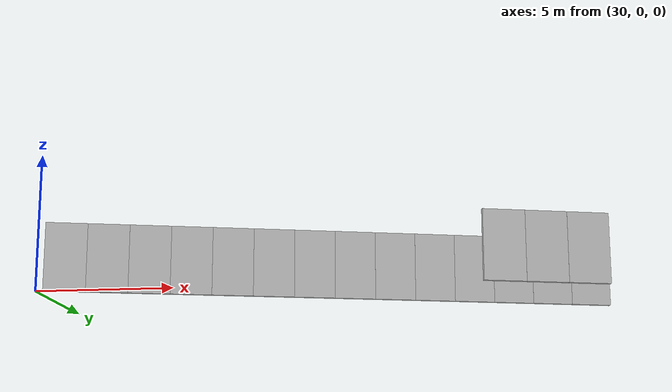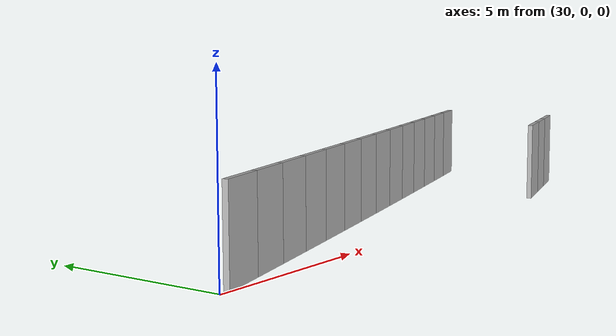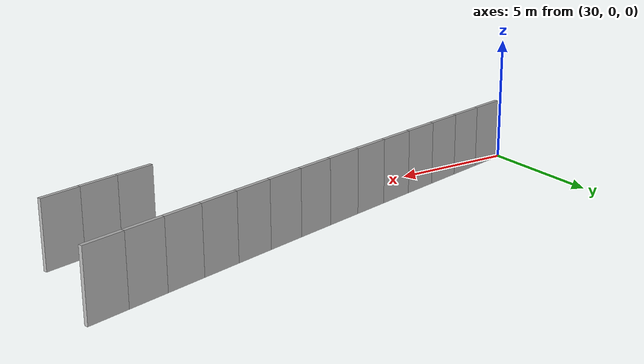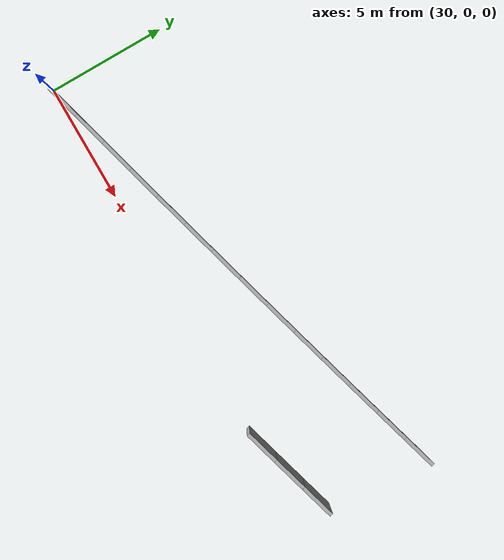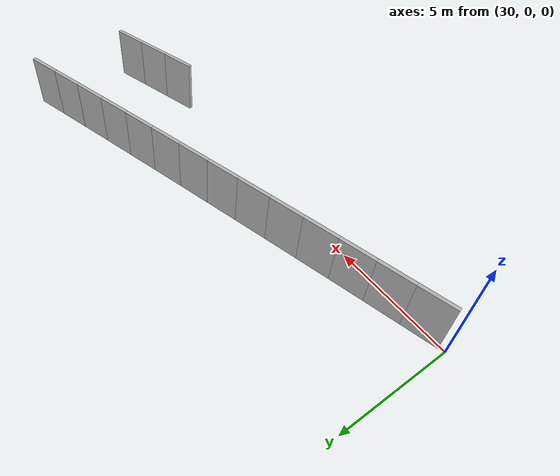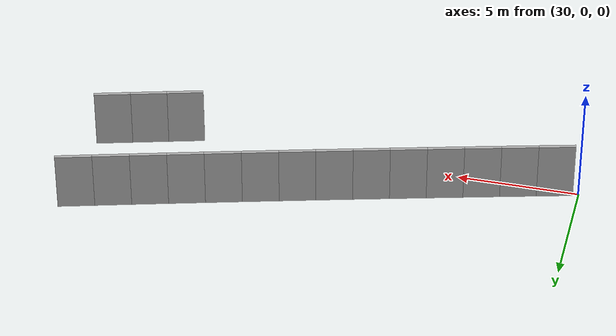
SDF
<?xml version="1.0" ?>
<sdf version="1.6">
  <model name="sps_3004">
    <pose frame="">0 0 0 0 -0 0</pose>
    <static>1</static>
    <self_collide>0</self_collide>
    <allow_auto_disable>0</allow_auto_disable>
    <link name="Wall3827">
      <kinematic>0</kinematic>
      <gravity>1</gravity>
      <self_collide>0</self_collide>
      <collision name="collision">
        <geometry>
          <box>
            <size>1.49657 0.15 2.5</size>
          </box>
        </geometry>
        <pose frame="">0 0 0 0 -0 0</pose>
      </collision>
      <visual name="visual">
        <geometry>
          <box>
            <size>1.49657 0.15 2.5</size>
          </box>
        </geometry>
        <pose frame="">0 0 0 0 -0 0</pose>
        <cast_shadows>1</cast_shadows>
        <transparency>0.0</transparency>
      </visual>
      <pose frame="">30.9653 0.212905 1.25 0 -0 0.257571</pose>
    </link>
    <link name="Wall3828">
      <kinematic>0</kinematic>
      <gravity>1</gravity>
      <self_collide>0</self_collide>
      <collision name="collision">
        <geometry>
          <box>
            <size>1.49658 0.15 2.5</size>
          </box>
        </geometry>
        <pose frame="">0 0 0 0 -0 0</pose>
      </collision>
      <visual name="visual">
        <geometry>
          <box>
            <size>1.49658 0.15 2.5</size>
          </box>
        </geometry>
        <pose frame="">0 0 0 0 -0 0</pose>
        <cast_shadows>1</cast_shadows>
        <transparency>0.0</transparency>
      </visual>
      <pose frame="">32.4122 0.59529 1.25 0 -0 0.259173</pose>
    </link>
    <link name="Wall3829">
      <kinematic>0</kinematic>
      <gravity>1</gravity>
      <self_collide>0</self_collide>
      <collision name="collision">
        <geometry>
          <box>
            <size>1.49645 0.15 2.5</size>
          </box>
        </geometry>
        <pose frame="">0 0 0 0 -0 0</pose>
      </collision>
      <visual name="visual">
        <geometry>
          <box>
            <size>1.49645 0.15 2.5</size>
          </box>
        </geometry>
        <pose frame="">0 0 0 0 -0 0</pose>
        <cast_shadows>1</cast_shadows>
        <transparency>0.0</transparency>
      </visual>
      <pose frame="">33.8584 0.980086 1.25 0 -0 0.260926</pose>
    </link>
    <link name="Wall3830">
      <kinematic>0</kinematic>
      <gravity>1</gravity>
      <self_collide>0</self_collide>
      <collision name="collision">
        <geometry>
          <box>
            <size>1.49637 0.15 2.5</size>
          </box>
        </geometry>
        <pose frame="">0 0 0 0 -0 0</pose>
      </collision>
      <visual name="visual">
        <geometry>
          <box>
            <size>1.49637 0.15 2.5</size>
          </box>
        </geometry>
        <pose frame="">0 0 0 0 -0 0</pose>
        <cast_shadows>1</cast_shadows>
        <transparency>0.0</transparency>
      </visual>
      <pose frame="">35.3039 1.36711 1.25 0 -0 0.262292</pose>
    </link>
    <link name="Wall3831">
      <kinematic>0</kinematic>
      <gravity>1</gravity>
      <self_collide>0</self_collide>
      <collision name="collision">
        <geometry>
          <box>
            <size>1.49663 0.15 2.5</size>
          </box>
        </geometry>
        <pose frame="">0 0 0 0 -0 0</pose>
      </collision>
      <visual name="visual">
        <geometry>
          <box>
            <size>1.49663 0.15 2.5</size>
          </box>
        </geometry>
        <pose frame="">0 0 0 0 -0 0</pose>
        <cast_shadows>1</cast_shadows>
        <transparency>0.0</transparency>
      </visual>
      <pose frame="">36.7489 1.7563 1.25 0 -0 0.263891</pose>
    </link>
    <link name="Wall3832">
      <kinematic>0</kinematic>
      <gravity>1</gravity>
      <self_collide>0</self_collide>
      <collision name="collision">
        <geometry>
          <box>
            <size>1.49638 0.15 2.5</size>
          </box>
        </geometry>
        <pose frame="">0 0 0 0 -0 0</pose>
      </collision>
      <visual name="visual">
        <geometry>
          <box>
            <size>1.49638 0.15 2.5</size>
          </box>
        </geometry>
        <pose frame="">0 0 0 0 -0 0</pose>
        <cast_shadows>1</cast_shadows>
        <transparency>0.0</transparency>
      </visual>
      <pose frame="">38.1933 2.14778 1.25 0 -0 0.265458</pose>
    </link>
    <link name="Wall3833">
      <kinematic>0</kinematic>
      <gravity>1</gravity>
      <self_collide>0</self_collide>
      <collision name="collision">
        <geometry>
          <box>
            <size>1.49667 0.15 2.5</size>
          </box>
        </geometry>
        <pose frame="">0 0 0 0 -0 0</pose>
      </collision>
      <visual name="visual">
        <geometry>
          <box>
            <size>1.49667 0.15 2.5</size>
          </box>
        </geometry>
        <pose frame="">0 0 0 0 -0 0</pose>
        <cast_shadows>1</cast_shadows>
        <transparency>0.0</transparency>
      </visual>
      <pose frame="">39.637 2.54158 1.25 0 -0 0.267096</pose>
    </link>
    <link name="Wall3834">
      <kinematic>0</kinematic>
      <gravity>1</gravity>
      <self_collide>0</self_collide>
      <collision name="collision">
        <geometry>
          <box>
            <size>1.49649 0.15 2.5</size>
          </box>
        </geometry>
        <pose frame="">0 0 0 0 -0 0</pose>
      </collision>
      <visual name="visual">
        <geometry>
          <box>
            <size>1.49649 0.15 2.5</size>
          </box>
        </geometry>
        <pose frame="">0 0 0 0 -0 0</pose>
        <cast_shadows>1</cast_shadows>
        <transparency>0.0</transparency>
      </visual>
      <pose frame="">41.0803 2.9377 1.25 0 -0 0.268652</pose>
    </link>
    <link name="Wall3835">
      <kinematic>0</kinematic>
      <gravity>1</gravity>
      <self_collide>0</self_collide>
      <collision name="collision">
        <geometry>
          <box>
            <size>1.49654 0.15 2.5</size>
          </box>
        </geometry>
        <pose frame="">0 0 0 0 -0 0</pose>
      </collision>
      <visual name="visual">
        <geometry>
          <box>
            <size>1.49654 0.15 2.5</size>
          </box>
        </geometry>
        <pose frame="">0 0 0 0 -0 0</pose>
        <cast_shadows>1</cast_shadows>
        <transparency>0.0</transparency>
      </visual>
      <pose frame="">42.5228 3.3361 1.25 0 -0 0.270294</pose>
    </link>
    <link name="Wall3836">
      <kinematic>0</kinematic>
      <gravity>1</gravity>
      <self_collide>0</self_collide>
      <collision name="collision">
        <geometry>
          <box>
            <size>1.49658 0.15 2.5</size>
          </box>
        </geometry>
        <pose frame="">0 0 0 0 -0 0</pose>
      </collision>
      <visual name="visual">
        <geometry>
          <box>
            <size>1.49658 0.15 2.5</size>
          </box>
        </geometry>
        <pose frame="">0 0 0 0 -0 0</pose>
        <cast_shadows>1</cast_shadows>
        <transparency>0.0</transparency>
      </visual>
      <pose frame="">43.9647 3.73689 1.25 0 -0 0.271936</pose>
    </link>
    <link name="Wall3837">
      <kinematic>0</kinematic>
      <gravity>1</gravity>
      <self_collide>0</self_collide>
      <collision name="collision">
        <geometry>
          <box>
            <size>1.49654 0.15 2.5</size>
          </box>
        </geometry>
        <pose frame="">0 0 0 0 -0 0</pose>
      </collision>
      <visual name="visual">
        <geometry>
          <box>
            <size>1.49654 0.15 2.5</size>
          </box>
        </geometry>
        <pose frame="">0 0 0 0 -0 0</pose>
        <cast_shadows>1</cast_shadows>
        <transparency>0.0</transparency>
      </visual>
      <pose frame="">45.4059 4.13988 1.25 0 -0 0.273342</pose>
    </link>
    <link name="Wall3838">
      <kinematic>0</kinematic>
      <gravity>1</gravity>
      <self_collide>0</self_collide>
      <collision name="collision">
        <geometry>
          <box>
            <size>1.4965 0.15 2.5</size>
          </box>
        </geometry>
        <pose frame="">0 0 0 0 -0 0</pose>
      </collision>
      <visual name="visual">
        <geometry>
          <box>
            <size>1.4965 0.15 2.5</size>
          </box>
        </geometry>
        <pose frame="">0 0 0 0 -0 0</pose>
        <cast_shadows>1</cast_shadows>
        <transparency>0.0</transparency>
      </visual>
      <pose frame="">46.8465 4.54509 1.25 0 -0 0.275045</pose>
    </link>
    <link name="Wall3839">
      <kinematic>0</kinematic>
      <gravity>1</gravity>
      <self_collide>0</self_collide>
      <collision name="collision">
        <geometry>
          <box>
            <size>1.4965 0.15 2.5</size>
          </box>
        </geometry>
        <pose frame="">0 0 0 0 -0 0</pose>
      </collision>
      <visual name="visual">
        <geometry>
          <box>
            <size>1.4965 0.15 2.5</size>
          </box>
        </geometry>
        <pose frame="">0 0 0 0 -0 0</pose>
        <cast_shadows>1</cast_shadows>
        <transparency>0.0</transparency>
      </visual>
      <pose frame="">48.2865 4.95271 1.25 0 -0 0.276697</pose>
    </link>
    <link name="Wall3840">
      <kinematic>0</kinematic>
      <gravity>1</gravity>
      <self_collide>0</self_collide>
      <collision name="collision">
        <geometry>
          <box>
            <size>1.49655 0.15 2.5</size>
          </box>
        </geometry>
        <pose frame="">0 0 0 0 -0 0</pose>
      </collision>
      <visual name="visual">
        <geometry>
          <box>
            <size>1.49655 0.15 2.5</size>
          </box>
        </geometry>
        <pose frame="">0 0 0 0 -0 0</pose>
        <cast_shadows>1</cast_shadows>
        <transparency>0.0</transparency>
      </visual>
      <pose frame="">49.7258 5.36259 1.25 0 -0 0.278171</pose>
    </link>
    <link name="Wall7612">
      <kinematic>0</kinematic>
      <gravity>1</gravity>
      <self_collide>0</self_collide>
      <collision name="collision">
        <geometry>
          <box>
            <size>1.50308 0.15 2.5</size>
          </box>
        </geometry>
        <pose frame="">0 0 0 0 -0 0</pose>
      </collision>
      <visual name="visual">
        <geometry>
          <box>
            <size>1.50308 0.15 2.5</size>
          </box>
        </geometry>
        <pose frame="">0 0 0 0 -0 0</pose>
        <cast_shadows>1</cast_shadows>
        <transparency>0.0</transparency>
      </visual>
      <pose frame="">46.5265 0.153884 1.25 0 -0 0.273514</pose>
    </link>
    <link name="Wall7613">
      <kinematic>0</kinematic>
      <gravity>1</gravity>
      <self_collide>0</self_collide>
      <collision name="collision">
        <geometry>
          <box>
            <size>1.50309 0.15 2.5</size>
          </box>
        </geometry>
        <pose frame="">0 0 0 0 -0 0</pose>
      </collision>
      <visual name="visual">
        <geometry>
          <box>
            <size>1.50309 0.15 2.5</size>
          </box>
        </geometry>
        <pose frame="">0 0 0 0 -0 0</pose>
        <cast_shadows>1</cast_shadows>
        <transparency>0.0</transparency>
      </visual>
      <pose frame="">47.9734 0.560988 1.25 0 -0 0.275031</pose>
    </link>
    <link name="Wall7614">
      <kinematic>0</kinematic>
      <gravity>1</gravity>
      <self_collide>0</self_collide>
      <collision name="collision">
        <geometry>
          <box>
            <size>1.50315 0.15 2.5</size>
          </box>
        </geometry>
        <pose frame="">0 0 0 0 -0 0</pose>
      </collision>
      <visual name="visual">
        <geometry>
          <box>
            <size>1.50315 0.15 2.5</size>
          </box>
        </geometry>
        <pose frame="">0 0 0 0 -0 0</pose>
        <cast_shadows>1</cast_shadows>
        <transparency>0.0</transparency>
      </visual>
      <pose frame="">49.4197 0.970382 1.25 0 -0 0.276665</pose>
    </link>
  </model>
</sdf>
